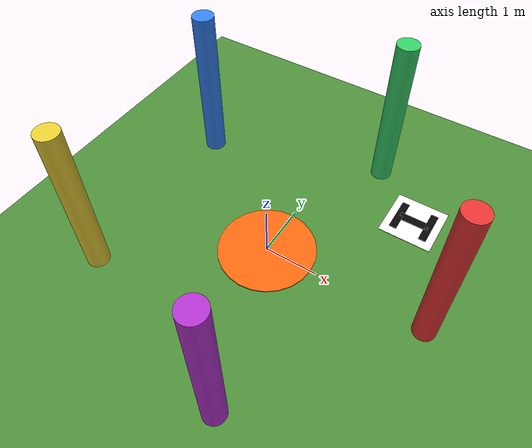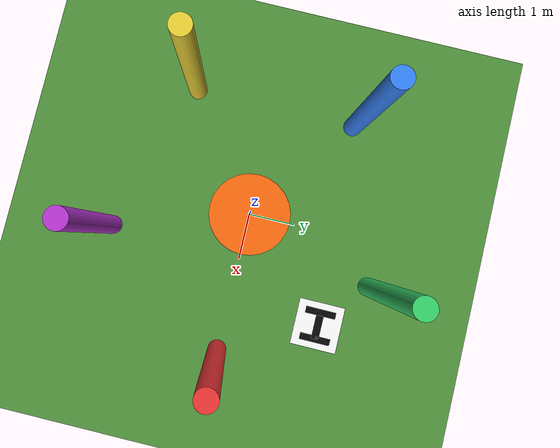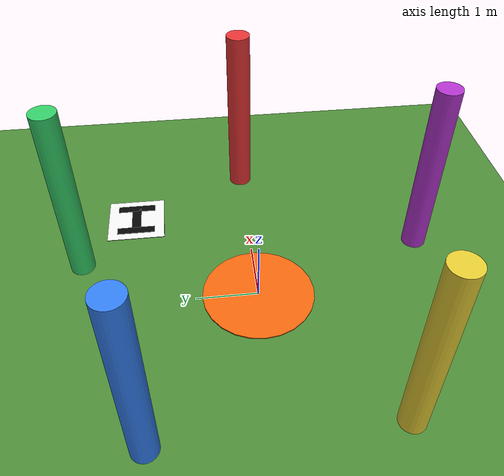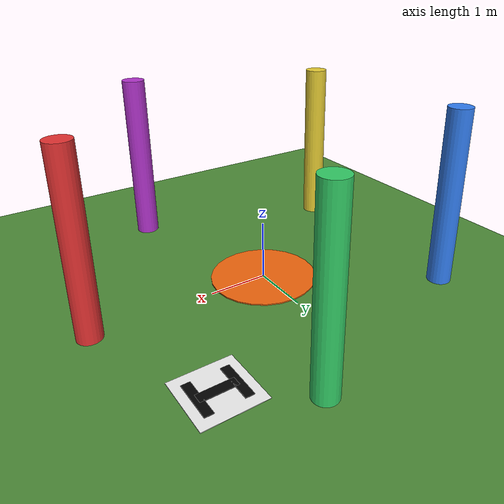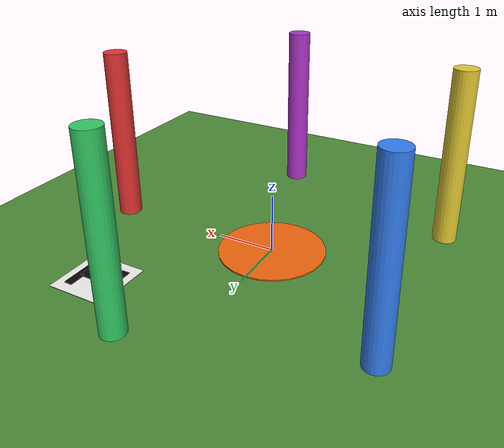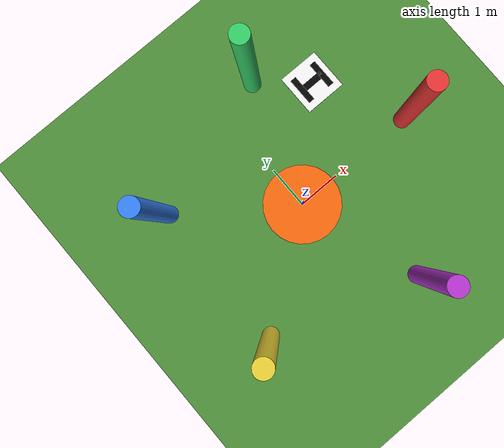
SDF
<?xml version="1.0" ?>
<sdf version="1.9">
  <world name="5pillars">

    <!-- ============ ФИЗИКА (настройка под слабое железо) ============ -->
    <physics name="default" type="ode">
      <max_step_size>0.004</max_step_size>
      <real_time_factor>1.0</real_time_factor>
      <real_time_update_rate>250</real_time_update_rate>
    </physics>
    <plugin name="gz::sim::systems::Physics" filename="gz-sim-physics-system"/>
    <plugin name="gz::sim::systems::UserCommands" filename="gz-sim-user-commands-system"/>
    <plugin name="gz::sim::systems::SceneBroadcaster" filename="gz-sim-scene-broadcaster-system"/>
    <plugin name="gz::sim::systems::Contact" filename="gz-sim-contact-system"/>
    <plugin name="gz::sim::systems::Sensors" filename="gz-sim-sensors-system"/>
    <plugin name="gz::sim::systems::Imu" filename="gz-sim-imu-system"/>
    <plugin name="gz::sim::systems::AirPressure" filename="gz-sim-air-pressure-system"/>
    <plugin name="gz::sim::systems::NavSat" filename="gz-sim-navsat-system"/>
    <plugin name="gz::sim::systems::Magnetometer" filename="gz-sim-magnetometer-system"/>

    <!-- Магнитное поле Земли (нужно для компаса sensor_mag_sim). -->
    <magnetic_field>6e-06 2.3e-05 -4.2e-05</magnetic_field>

    <!-- ============ СЦЕНА (голубой фон, тени выключены) ============ -->
    <scene>
      <ambient>0.55 0.55 0.6</ambient>
      <background>0.53 0.81 0.92</background>
      <shadows>false</shadows>
      <grid>false</grid>
    </scene>

    <light type="directional" name="sun">
      <cast_shadows>false</cast_shadows>
      <pose>0 0 10 0 0 0</pose>
      <direction>0.3 0.4 -1</direction>
      <diffuse>0.9 0.9 0.85 1</diffuse>
      <specular>0.2 0.2 0.2 1</specular>
    </light>

    <!-- ============ ЗЕМЛЯ: зелёная «трава» ============ -->
    <model name="ground_plane">
      <static>true</static>
      <link name="link">
        <collision name="collision">
          <geometry>
            <plane>
              <normal>0 0 1</normal>
              <size>40 40</size>
            </plane>
          </geometry>
        </collision>
        <visual name="visual">
          <geometry>
            <plane>
              <normal>0 0 1</normal>
              <size>40 40</size>
            </plane>
          </geometry>
          <material>
            <ambient>0.2 0.45 0.18 1</ambient>
            <diffuse>0.3 0.55 0.22 1</diffuse>
            <specular>0.05 0.05 0.05 1</specular>
          </material>
        </visual>
      </link>
    </model>

    <!-- ============ СТАРТОВАЯ ПЛОЩАДКА (точка взлёта) ============ -->
    <model name="pad_start">
      <static>true</static>
      <pose>0 0 0.01 0 0 0</pose>
      <link name="link">
        <visual name="visual">
          <geometry>
            <cylinder>
              <radius>0.9</radius>
              <length>0.02</length>
            </cylinder>
          </geometry>
          <material>
            <ambient>0.9 0.35 0.05 1</ambient>
            <diffuse>0.95 0.4 0.05 1</diffuse>
            <specular>0.2 0.2 0.2 1</specular>
          </material>
        </visual>
      </link>
    </model>

    <model name="pillar_1">
      <static>true</static>
      <pose>3.0 0.0 1.5 0 0 0</pose>
      <link name="link">
        <collision name="collision">
          <geometry>
            <cylinder>
              <radius>0.2</radius>
              <length>3.0</length>
            </cylinder>
          </geometry>
        </collision>
        <visual name="visual">
          <geometry>
            <cylinder>
              <radius>0.2</radius>
              <length>3.0</length>
            </cylinder>
          </geometry>
          <material>
            <ambient>0.8 0.1 0.1 1</ambient>
            <diffuse>0.9 0.2 0.2 1</diffuse>
          </material>
        </visual>
      </link>
    </model>

    <model name="pillar_2">
      <static>true</static>
      <pose>0.927 2.853 1.5 0 0 0</pose>
      <link name="link">
        <collision name="collision">
          <geometry>
            <cylinder>
              <radius>0.2</radius>
              <length>3.0</length>
            </cylinder>
          </geometry>
        </collision>
        <visual name="visual">
          <geometry>
            <cylinder>
              <radius>0.2</radius>
              <length>3.0</length>
            </cylinder>
          </geometry>
          <material>
            <ambient>0.1 0.7 0.3 1</ambient>
            <diffuse>0.2 0.8 0.4 1</diffuse>
          </material>
        </visual>
      </link>
    </model>

    <model name="pillar_3">
      <static>true</static>
      <pose>-2.427 1.763 1.5 0 0 0</pose>
      <link name="link">
        <collision name="collision">
          <geometry>
            <cylinder>
              <radius>0.2</radius>
              <length>3.0</length>
            </cylinder>
          </geometry>
        </collision>
        <visual name="visual">
          <geometry>
            <cylinder>
              <radius>0.2</radius>
              <length>3.0</length>
            </cylinder>
          </geometry>
          <material>
            <ambient>0.1 0.3 0.8 1</ambient>
            <diffuse>0.2 0.5 0.95 1</diffuse>
          </material>
        </visual>
      </link>
    </model>

    <model name="pillar_4">
      <static>true</static>
      <pose>-2.427 -1.763 1.5 0 0 0</pose>
      <link name="link">
        <collision name="collision">
          <geometry>
            <cylinder>
              <radius>0.2</radius>
              <length>3.0</length>
            </cylinder>
          </geometry>
        </collision>
        <visual name="visual">
          <geometry>
            <cylinder>
              <radius>0.2</radius>
              <length>3.0</length>
            </cylinder>
          </geometry>
          <material>
            <ambient>0.8 0.7 0.1 1</ambient>
            <diffuse>0.9 0.8 0.2 1</diffuse>
          </material>
        </visual>
      </link>
    </model>

    <model name="pillar_5">
      <static>true</static>
      <pose>0.927 -2.853 1.5 0 0 0</pose>
      <link name="link">
        <collision name="collision">
          <geometry>
            <cylinder>
              <radius>0.2</radius>
              <length>3.0</length>
            </cylinder>
          </geometry>
        </collision>
        <visual name="visual">
          <geometry>
            <cylinder>
              <radius>0.2</radius>
              <length>3.0</length>
            </cylinder>
          </geometry>
          <material>
            <ambient>0.6 0.1 0.7 1</ambient>
            <diffuse>0.7 0.2 0.8 1</diffuse>
          </material>
        </visual>
      </link>
    </model>

    <!-- ============ H-МАРКЕР (точная посадка, CV) ============ -->
    <include>
      <uri>model://h_marker</uri>
      <pose>2 2 0 0 0 0</pose>
    </include>

    <!-- ============ СФЕРИЧЕСКИЕ КООРДИНАТЫ (для NavSat / GPS) ============ -->
    <spherical_coordinates>
      <surface_model>EARTH_WGS84</surface_model>
      <world_frame_orientation>ENU</world_frame_orientation>
      <latitude_deg>47.397971057728974</latitude_deg>
      <longitude_deg>8.546163739800146</longitude_deg>
      <elevation>0</elevation>
    </spherical_coordinates>

  </world>
</sdf>

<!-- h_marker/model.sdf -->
<sdf version="1.9">
  <model name="h_marker">
    <static>true</static>
    <link name="link">

      <!-- Белая подложка 1x1 м (центр в начале координат, лежит на земле) -->
      <visual name="board">
        <geometry>
          <box>
            <size>1 1 0.01</size>
          </box>
        </geometry>
        <material>
          <ambient>0.9 0.9 0.9 1</ambient>
          <diffuse>0.95 0.95 0.95 1</diffuse>
        </material>
      </visual>
      <collision name="board_collision">
        <geometry>
          <box>
            <size>1 1 0.01</size>
          </box>
        </geometry>
      </collision>

      <!-- Левая ножка буквы H (тёмная) -->
      <visual name="leg_left">
        <pose>-0.29 0 0.012 0 0 0</pose>
        <geometry>
          <box>
            <size>0.14 0.66 0.012</size>
          </box>
        </geometry>
        <material>
          <ambient>0.02 0.02 0.02 1</ambient>
          <diffuse>0.02 0.02 0.02 1</diffuse>
        </material>
      </visual>

      <!-- Правая ножка буквы H (тёмная) -->
      <visual name="leg_right">
        <pose>0.29 0 0.012 0 0 0</pose>
        <geometry>
          <box>
            <size>0.14 0.66 0.012</size>
          </box>
        </geometry>
        <material>
          <ambient>0.02 0.02 0.02 1</ambient>
          <diffuse>0.02 0.02 0.02 1</diffuse>
        </material>
      </visual>

      <!-- Перекладина буквы H (тёмная) -->
      <visual name="crossbar">
        <pose>0 0 0.012 0 0 0</pose>
        <geometry>
          <box>
            <size>0.58 0.16 0.012</size>
          </box>
        </geometry>
        <material>
          <ambient>0.02 0.02 0.02 1</ambient>
          <diffuse>0.02 0.02 0.02 1</diffuse>
        </material>
      </visual>

    </link>
  </model>
</sdf>
